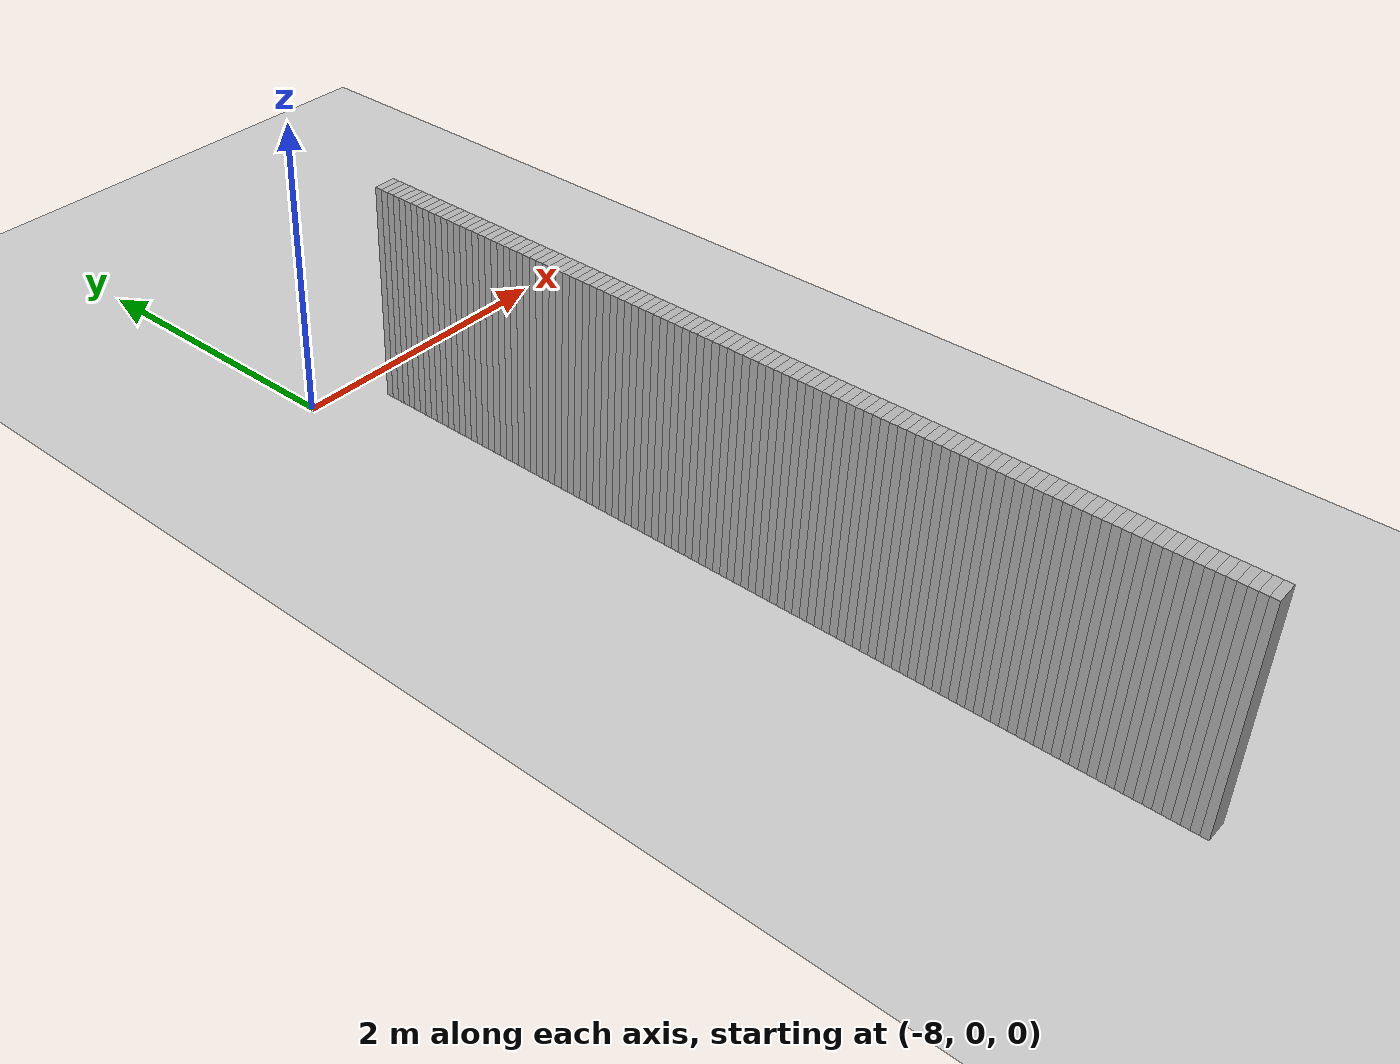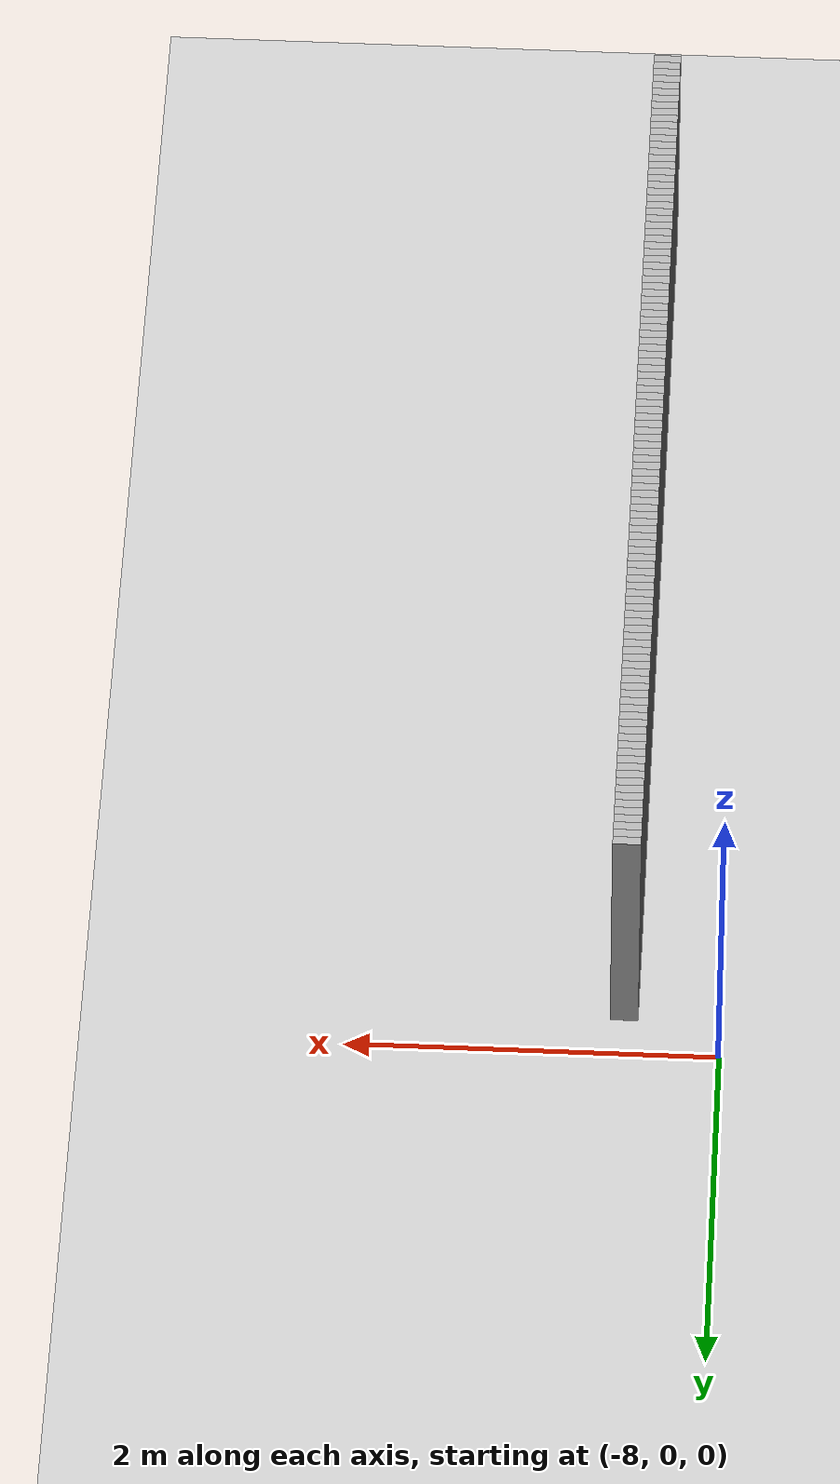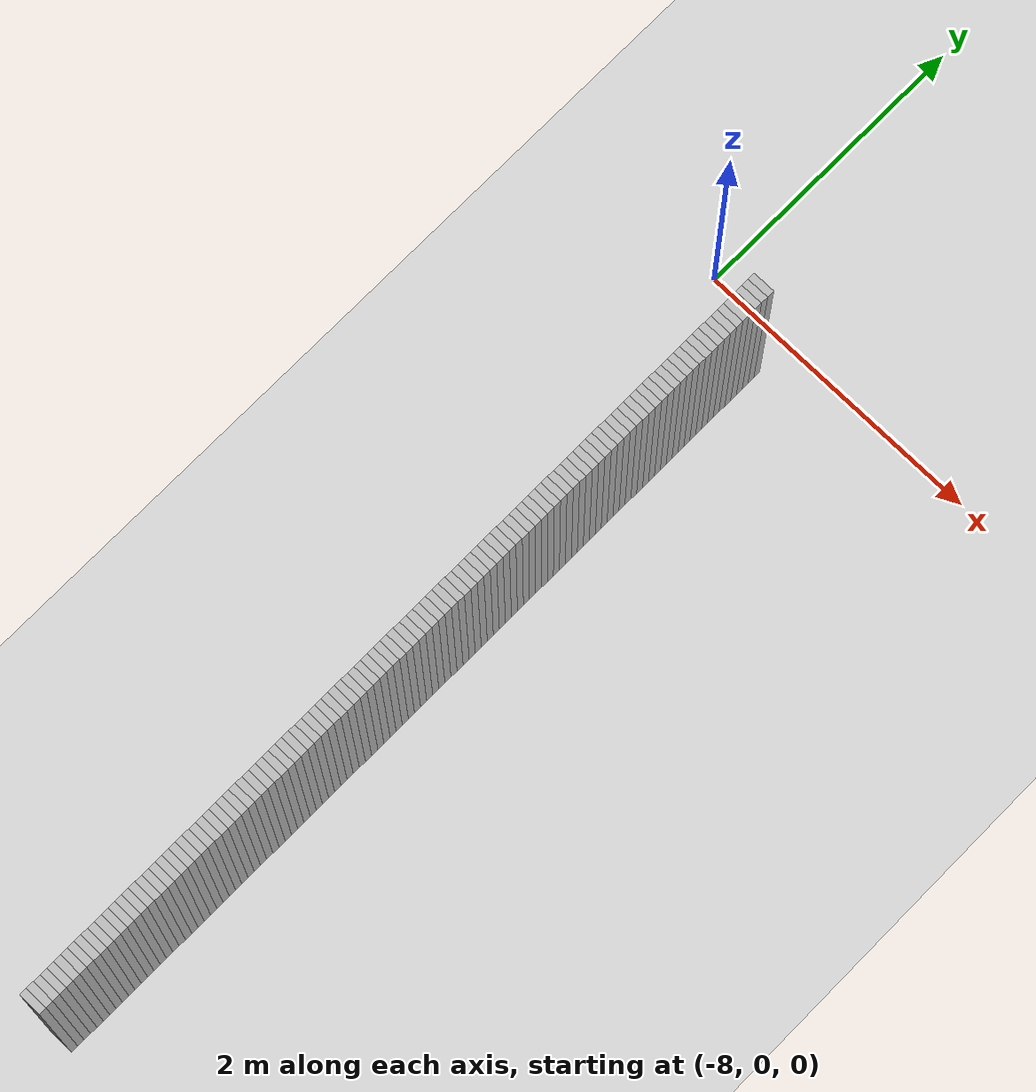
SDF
<sdf version="1.6">
 <world name="df_walled">
  <include><uri>model://sun</uri></include>
  <include><uri>model://ground_plane</uri></include>
  <model name="df_walls">
   <static>true</static>
   <link name="wall_00353">
    <pose>-7.4860 -0.2590 0.7500 0 0 0</pose>
    <collision name="col"><geometry><box><size>0.1500 0.0500 1.5000</size></box></geometry></collision>
    <visual name="vis">
     <geometry><box><size>0.1500 0.0500 1.5000</size></box></geometry>
     <material><ambient>0.5 0.5 0.5 1</ambient><diffuse>0.7 0.7 0.7 1</diffuse></material>
    </visual>
   </link>
   <link name="wall_00355">
    <pose>-7.4860 -0.3090 0.7500 0 0 0</pose>
    <collision name="col"><geometry><box><size>0.1500 0.0500 1.5000</size></box></geometry></collision>
    <visual name="vis">
     <geometry><box><size>0.1500 0.0500 1.5000</size></box></geometry>
     <material><ambient>0.5 0.5 0.5 1</ambient><diffuse>0.7 0.7 0.7 1</diffuse></material>
    </visual>
   </link>
   <link name="wall_00357">
    <pose>-7.4860 -0.3590 0.7500 0 0 0</pose>
    <collision name="col"><geometry><box><size>0.1500 0.0500 1.5000</size></box></geometry></collision>
    <visual name="vis">
     <geometry><box><size>0.1500 0.0500 1.5000</size></box></geometry>
     <material><ambient>0.5 0.5 0.5 1</ambient><diffuse>0.7 0.7 0.7 1</diffuse></material>
    </visual>
   </link>
   <link name="wall_00359">
    <pose>-7.4860 -0.4090 0.7500 0 0 0</pose>
    <collision name="col"><geometry><box><size>0.1500 0.0500 1.5000</size></box></geometry></collision>
    <visual name="vis">
     <geometry><box><size>0.1500 0.0500 1.5000</size></box></geometry>
     <material><ambient>0.5 0.5 0.5 1</ambient><diffuse>0.7 0.7 0.7 1</diffuse></material>
    </visual>
   </link>
   <link name="wall_00361">
    <pose>-7.4860 -0.4590 0.7500 0 0 0</pose>
    <collision name="col"><geometry><box><size>0.1500 0.0500 1.5000</size></box></geometry></collision>
    <visual name="vis">
     <geometry><box><size>0.1500 0.0500 1.5000</size></box></geometry>
     <material><ambient>0.5 0.5 0.5 1</ambient><diffuse>0.7 0.7 0.7 1</diffuse></material>
    </visual>
   </link>
   <link name="wall_00363">
    <pose>-7.4860 -0.5090 0.7500 0 0 0</pose>
    <collision name="col"><geometry><box><size>0.1500 0.0500 1.5000</size></box></geometry></collision>
    <visual name="vis">
     <geometry><box><size>0.1500 0.0500 1.5000</size></box></geometry>
     <material><ambient>0.5 0.5 0.5 1</ambient><diffuse>0.7 0.7 0.7 1</diffuse></material>
    </visual>
   </link>
   <link name="wall_00365">
    <pose>-7.4860 -0.5590 0.7500 0 0 0</pose>
    <collision name="col"><geometry><box><size>0.1500 0.0500 1.5000</size></box></geometry></collision>
    <visual name="vis">
     <geometry><box><size>0.1500 0.0500 1.5000</size></box></geometry>
     <material><ambient>0.5 0.5 0.5 1</ambient><diffuse>0.7 0.7 0.7 1</diffuse></material>
    </visual>
   </link>
   <link name="wall_00367">
    <pose>-7.4860 -0.6090 0.7500 0 0 0</pose>
    <collision name="col"><geometry><box><size>0.1500 0.0500 1.5000</size></box></geometry></collision>
    <visual name="vis">
     <geometry><box><size>0.1500 0.0500 1.5000</size></box></geometry>
     <material><ambient>0.5 0.5 0.5 1</ambient><diffuse>0.7 0.7 0.7 1</diffuse></material>
    </visual>
   </link>
   <link name="wall_00369">
    <pose>-7.4860 -0.6590 0.7500 0 0 0</pose>
    <collision name="col"><geometry><box><size>0.1500 0.0500 1.5000</size></box></geometry></collision>
    <visual name="vis">
     <geometry><box><size>0.1500 0.0500 1.5000</size></box></geometry>
     <material><ambient>0.5 0.5 0.5 1</ambient><diffuse>0.7 0.7 0.7 1</diffuse></material>
    </visual>
   </link>
   <link name="wall_00371">
    <pose>-7.4860 -0.7090 0.7500 0 0 0</pose>
    <collision name="col"><geometry><box><size>0.1500 0.0500 1.5000</size></box></geometry></collision>
    <visual name="vis">
     <geometry><box><size>0.1500 0.0500 1.5000</size></box></geometry>
     <material><ambient>0.5 0.5 0.5 1</ambient><diffuse>0.7 0.7 0.7 1</diffuse></material>
    </visual>
   </link>
   <link name="wall_00373">
    <pose>-7.4860 -0.7590 0.7500 0 0 0</pose>
    <collision name="col"><geometry><box><size>0.1500 0.0500 1.5000</size></box></geometry></collision>
    <visual name="vis">
     <geometry><box><size>0.1500 0.0500 1.5000</size></box></geometry>
     <material><ambient>0.5 0.5 0.5 1</ambient><diffuse>0.7 0.7 0.7 1</diffuse></material>
    </visual>
   </link>
   <link name="wall_00375">
    <pose>-7.4860 -0.8090 0.7500 0 0 0</pose>
    <collision name="col"><geometry><box><size>0.1500 0.0500 1.5000</size></box></geometry></collision>
    <visual name="vis">
     <geometry><box><size>0.1500 0.0500 1.5000</size></box></geometry>
     <material><ambient>0.5 0.5 0.5 1</ambient><diffuse>0.7 0.7 0.7 1</diffuse></material>
    </visual>
   </link>
   <link name="wall_00377">
    <pose>-7.4860 -0.8590 0.7500 0 0 0</pose>
    <collision name="col"><geometry><box><size>0.1500 0.0500 1.5000</size></box></geometry></collision>
    <visual name="vis">
     <geometry><box><size>0.1500 0.0500 1.5000</size></box></geometry>
     <material><ambient>0.5 0.5 0.5 1</ambient><diffuse>0.7 0.7 0.7 1</diffuse></material>
    </visual>
   </link>
   <link name="wall_00379">
    <pose>-7.4860 -0.9090 0.7500 0 0 0</pose>
    <collision name="col"><geometry><box><size>0.1500 0.0500 1.5000</size></box></geometry></collision>
    <visual name="vis">
     <geometry><box><size>0.1500 0.0500 1.5000</size></box></geometry>
     <material><ambient>0.5 0.5 0.5 1</ambient><diffuse>0.7 0.7 0.7 1</diffuse></material>
    </visual>
   </link>
   <link name="wall_00381">
    <pose>-7.4860 -0.9590 0.7500 0 0 0</pose>
    <collision name="col"><geometry><box><size>0.1500 0.0500 1.5000</size></box></geometry></collision>
    <visual name="vis">
     <geometry><box><size>0.1500 0.0500 1.5000</size></box></geometry>
     <material><ambient>0.5 0.5 0.5 1</ambient><diffuse>0.7 0.7 0.7 1</diffuse></material>
    </visual>
   </link>
   <link name="wall_00383">
    <pose>-7.4860 -1.0090 0.7500 0 0 0</pose>
    <collision name="col"><geometry><box><size>0.1500 0.0500 1.5000</size></box></geometry></collision>
    <visual name="vis">
     <geometry><box><size>0.1500 0.0500 1.5000</size></box></geometry>
     <material><ambient>0.5 0.5 0.5 1</ambient><diffuse>0.7 0.7 0.7 1</diffuse></material>
    </visual>
   </link>
   <link name="wall_00385">
    <pose>-7.4860 -1.0590 0.7500 0 0 0</pose>
    <collision name="col"><geometry><box><size>0.1500 0.0500 1.5000</size></box></geometry></collision>
    <visual name="vis">
     <geometry><box><size>0.1500 0.0500 1.5000</size></box></geometry>
     <material><ambient>0.5 0.5 0.5 1</ambient><diffuse>0.7 0.7 0.7 1</diffuse></material>
    </visual>
   </link>
   <link name="wall_00387">
    <pose>-7.4860 -1.1090 0.7500 0 0 0</pose>
    <collision name="col"><geometry><box><size>0.1500 0.0500 1.5000</size></box></geometry></collision>
    <visual name="vis">
     <geometry><box><size>0.1500 0.0500 1.5000</size></box></geometry>
     <material><ambient>0.5 0.5 0.5 1</ambient><diffuse>0.7 0.7 0.7 1</diffuse></material>
    </visual>
   </link>
   <link name="wall_00389">
    <pose>-7.4860 -1.1590 0.7500 0 0 0</pose>
    <collision name="col"><geometry><box><size>0.1500 0.0500 1.5000</size></box></geometry></collision>
    <visual name="vis">
     <geometry><box><size>0.1500 0.0500 1.5000</size></box></geometry>
     <material><ambient>0.5 0.5 0.5 1</ambient><diffuse>0.7 0.7 0.7 1</diffuse></material>
    </visual>
   </link>
   <link name="wall_00391">
    <pose>-7.4860 -1.2090 0.7500 0 0 0</pose>
    <collision name="col"><geometry><box><size>0.1500 0.0500 1.5000</size></box></geometry></collision>
    <visual name="vis">
     <geometry><box><size>0.1500 0.0500 1.5000</size></box></geometry>
     <material><ambient>0.5 0.5 0.5 1</ambient><diffuse>0.7 0.7 0.7 1</diffuse></material>
    </visual>
   </link>
   <link name="wall_00393">
    <pose>-7.4860 -1.2590 0.7500 0 0 0</pose>
    <collision name="col"><geometry><box><size>0.1500 0.0500 1.5000</size></box></geometry></collision>
    <visual name="vis">
     <geometry><box><size>0.1500 0.0500 1.5000</size></box></geometry>
     <material><ambient>0.5 0.5 0.5 1</ambient><diffuse>0.7 0.7 0.7 1</diffuse></material>
    </visual>
   </link>
   <link name="wall_00395">
    <pose>-7.4860 -1.3090 0.7500 0 0 0</pose>
    <collision name="col"><geometry><box><size>0.1500 0.0500 1.5000</size></box></geometry></collision>
    <visual name="vis">
     <geometry><box><size>0.1500 0.0500 1.5000</size></box></geometry>
     <material><ambient>0.5 0.5 0.5 1</ambient><diffuse>0.7 0.7 0.7 1</diffuse></material>
    </visual>
   </link>
   <link name="wall_00397">
    <pose>-7.4860 -1.3590 0.7500 0 0 0</pose>
    <collision name="col"><geometry><box><size>0.1500 0.0500 1.5000</size></box></geometry></collision>
    <visual name="vis">
     <geometry><box><size>0.1500 0.0500 1.5000</size></box></geometry>
     <material><ambient>0.5 0.5 0.5 1</ambient><diffuse>0.7 0.7 0.7 1</diffuse></material>
    </visual>
   </link>
   <link name="wall_00399">
    <pose>-7.4860 -1.4090 0.7500 0 0 0</pose>
    <collision name="col"><geometry><box><size>0.1500 0.0500 1.5000</size></box></geometry></collision>
    <visual name="vis">
     <geometry><box><size>0.1500 0.0500 1.5000</size></box></geometry>
     <material><ambient>0.5 0.5 0.5 1</ambient><diffuse>0.7 0.7 0.7 1</diffuse></material>
    </visual>
   </link>
   <link name="wall_00401">
    <pose>-7.4860 -1.4590 0.7500 0 0 0</pose>
    <collision name="col"><geometry><box><size>0.1500 0.0500 1.5000</size></box></geometry></collision>
    <visual name="vis">
     <geometry><box><size>0.1500 0.0500 1.5000</size></box></geometry>
     <material><ambient>0.5 0.5 0.5 1</ambient><diffuse>0.7 0.7 0.7 1</diffuse></material>
    </visual>
   </link>
   <link name="wall_00403">
    <pose>-7.4860 -1.5090 0.7500 0 0 0</pose>
    <collision name="col"><geometry><box><size>0.1500 0.0500 1.5000</size></box></geometry></collision>
    <visual name="vis">
     <geometry><box><size>0.1500 0.0500 1.5000</size></box></geometry>
     <material><ambient>0.5 0.5 0.5 1</ambient><diffuse>0.7 0.7 0.7 1</diffuse></material>
    </visual>
   </link>
   <link name="wall_00405">
    <pose>-7.4860 -1.5590 0.7500 0 0 0</pose>
    <collision name="col"><geometry><box><size>0.1500 0.0500 1.5000</size></box></geometry></collision>
    <visual name="vis">
     <geometry><box><size>0.1500 0.0500 1.5000</size></box></geometry>
     <material><ambient>0.5 0.5 0.5 1</ambient><diffuse>0.7 0.7 0.7 1</diffuse></material>
    </visual>
   </link>
   <link name="wall_00407">
    <pose>-7.4860 -1.6090 0.7500 0 0 0</pose>
    <collision name="col"><geometry><box><size>0.1500 0.0500 1.5000</size></box></geometry></collision>
    <visual name="vis">
     <geometry><box><size>0.1500 0.0500 1.5000</size></box></geometry>
     <material><ambient>0.5 0.5 0.5 1</ambient><diffuse>0.7 0.7 0.7 1</diffuse></material>
    </visual>
   </link>
   <link name="wall_00409">
    <pose>-7.4860 -1.6590 0.7500 0 0 0</pose>
    <collision name="col"><geometry><box><size>0.1500 0.0500 1.5000</size></box></geometry></collision>
    <visual name="vis">
     <geometry><box><size>0.1500 0.0500 1.5000</size></box></geometry>
     <material><ambient>0.5 0.5 0.5 1</ambient><diffuse>0.7 0.7 0.7 1</diffuse></material>
    </visual>
   </link>
   <link name="wall_00411">
    <pose>-7.4860 -1.7090 0.7500 0 0 0</pose>
    <collision name="col"><geometry><box><size>0.1500 0.0500 1.5000</size></box></geometry></collision>
    <visual name="vis">
     <geometry><box><size>0.1500 0.0500 1.5000</size></box></geometry>
     <material><ambient>0.5 0.5 0.5 1</ambient><diffuse>0.7 0.7 0.7 1</diffuse></material>
    </visual>
   </link>
   <link name="wall_00413">
    <pose>-7.4860 -1.7590 0.7500 0 0 0</pose>
    <collision name="col"><geometry><box><size>0.1500 0.0500 1.5000</size></box></geometry></collision>
    <visual name="vis">
     <geometry><box><size>0.1500 0.0500 1.5000</size></box></geometry>
     <material><ambient>0.5 0.5 0.5 1</ambient><diffuse>0.7 0.7 0.7 1</diffuse></material>
    </visual>
   </link>
   <link name="wall_00415">
    <pose>-7.4860 -1.8090 0.7500 0 0 0</pose>
    <collision name="col"><geometry><box><size>0.1500 0.0500 1.5000</size></box></geometry></collision>
    <visual name="vis">
     <geometry><box><size>0.1500 0.0500 1.5000</size></box></geometry>
     <material><ambient>0.5 0.5 0.5 1</ambient><diffuse>0.7 0.7 0.7 1</diffuse></material>
    </visual>
   </link>
   <link name="wall_00417">
    <pose>-7.4860 -1.8590 0.7500 0 0 0</pose>
    <collision name="col"><geometry><box><size>0.1500 0.0500 1.5000</size></box></geometry></collision>
    <visual name="vis">
     <geometry><box><size>0.1500 0.0500 1.5000</size></box></geometry>
     <material><ambient>0.5 0.5 0.5 1</ambient><diffuse>0.7 0.7 0.7 1</diffuse></material>
    </visual>
   </link>
   <link name="wall_00419">
    <pose>-7.4860 -1.9090 0.7500 0 0 0</pose>
    <collision name="col"><geometry><box><size>0.1500 0.0500 1.5000</size></box></geometry></collision>
    <visual name="vis">
     <geometry><box><size>0.1500 0.0500 1.5000</size></box></geometry>
     <material><ambient>0.5 0.5 0.5 1</ambient><diffuse>0.7 0.7 0.7 1</diffuse></material>
    </visual>
   </link>
   <link name="wall_00421">
    <pose>-7.4860 -1.9590 0.7500 0 0 0</pose>
    <collision name="col"><geometry><box><size>0.1500 0.0500 1.5000</size></box></geometry></collision>
    <visual name="vis">
     <geometry><box><size>0.1500 0.0500 1.5000</size></box></geometry>
     <material><ambient>0.5 0.5 0.5 1</ambient><diffuse>0.7 0.7 0.7 1</diffuse></material>
    </visual>
   </link>
   <link name="wall_00423">
    <pose>-7.4860 -2.0090 0.7500 0 0 0</pose>
    <collision name="col"><geometry><box><size>0.1500 0.0500 1.5000</size></box></geometry></collision>
    <visual name="vis">
     <geometry><box><size>0.1500 0.0500 1.5000</size></box></geometry>
     <material><ambient>0.5 0.5 0.5 1</ambient><diffuse>0.7 0.7 0.7 1</diffuse></material>
    </visual>
   </link>
   <link name="wall_00425">
    <pose>-7.4860 -2.0590 0.7500 0 0 0</pose>
    <collision name="col"><geometry><box><size>0.1500 0.0500 1.5000</size></box></geometry></collision>
    <visual name="vis">
     <geometry><box><size>0.1500 0.0500 1.5000</size></box></geometry>
     <material><ambient>0.5 0.5 0.5 1</ambient><diffuse>0.7 0.7 0.7 1</diffuse></material>
    </visual>
   </link>
   <link name="wall_00427">
    <pose>-7.4860 -2.1090 0.7500 0 0 0</pose>
    <collision name="col"><geometry><box><size>0.1500 0.0500 1.5000</size></box></geometry></collision>
    <visual name="vis">
     <geometry><box><size>0.1500 0.0500 1.5000</size></box></geometry>
     <material><ambient>0.5 0.5 0.5 1</ambient><diffuse>0.7 0.7 0.7 1</diffuse></material>
    </visual>
   </link>
   <link name="wall_00429">
    <pose>-7.4860 -2.1590 0.7500 0 0 0</pose>
    <collision name="col"><geometry><box><size>0.1500 0.0500 1.5000</size></box></geometry></collision>
    <visual name="vis">
     <geometry><box><size>0.1500 0.0500 1.5000</size></box></geometry>
     <material><ambient>0.5 0.5 0.5 1</ambient><diffuse>0.7 0.7 0.7 1</diffuse></material>
    </visual>
   </link>
   <link name="wall_00431">
    <pose>-7.4860 -2.2090 0.7500 0 0 0</pose>
    <collision name="col"><geometry><box><size>0.1500 0.0500 1.5000</size></box></geometry></collision>
    <visual name="vis">
     <geometry><box><size>0.1500 0.0500 1.5000</size></box></geometry>
     <material><ambient>0.5 0.5 0.5 1</ambient><diffuse>0.7 0.7 0.7 1</diffuse></material>
    </visual>
   </link>
   <link name="wall_00433">
    <pose>-7.4860 -2.2590 0.7500 0 0 0</pose>
    <collision name="col"><geometry><box><size>0.1500 0.0500 1.5000</size></box></geometry></collision>
    <visual name="vis">
     <geometry><box><size>0.1500 0.0500 1.5000</size></box></geometry>
     <material><ambient>0.5 0.5 0.5 1</ambient><diffuse>0.7 0.7 0.7 1</diffuse></material>
    </visual>
   </link>
   <link name="wall_00435">
    <pose>-7.4860 -2.3090 0.7500 0 0 0</pose>
    <collision name="col"><geometry><box><size>0.1500 0.0500 1.5000</size></box></geometry></collision>
    <visual name="vis">
     <geometry><box><size>0.1500 0.0500 1.5000</size></box></geometry>
     <material><ambient>0.5 0.5 0.5 1</ambient><diffuse>0.7 0.7 0.7 1</diffuse></material>
    </visual>
   </link>
   <link name="wall_00437">
    <pose>-7.4860 -2.3590 0.7500 0 0 0</pose>
    <collision name="col"><geometry><box><size>0.1500 0.0500 1.5000</size></box></geometry></collision>
    <visual name="vis">
     <geometry><box><size>0.1500 0.0500 1.5000</size></box></geometry>
     <material><ambient>0.5 0.5 0.5 1</ambient><diffuse>0.7 0.7 0.7 1</diffuse></material>
    </visual>
   </link>
   <link name="wall_00439">
    <pose>-7.4860 -2.4090 0.7500 0 0 0</pose>
    <collision name="col"><geometry><box><size>0.1500 0.0500 1.5000</size></box></geometry></collision>
    <visual name="vis">
     <geometry><box><size>0.1500 0.0500 1.5000</size></box></geometry>
     <material><ambient>0.5 0.5 0.5 1</ambient><diffuse>0.7 0.7 0.7 1</diffuse></material>
    </visual>
   </link>
   <link name="wall_00441">
    <pose>-7.4860 -2.4590 0.7500 0 0 0</pose>
    <collision name="col"><geometry><box><size>0.1500 0.0500 1.5000</size></box></geometry></collision>
    <visual name="vis">
     <geometry><box><size>0.1500 0.0500 1.5000</size></box></geometry>
     <material><ambient>0.5 0.5 0.5 1</ambient><diffuse>0.7 0.7 0.7 1</diffuse></material>
    </visual>
   </link>
   <link name="wall_00443">
    <pose>-7.4860 -2.5090 0.7500 0 0 0</pose>
    <collision name="col"><geometry><box><size>0.1500 0.0500 1.5000</size></box></geometry></collision>
    <visual name="vis">
     <geometry><box><size>0.1500 0.0500 1.5000</size></box></geometry>
     <material><ambient>0.5 0.5 0.5 1</ambient><diffuse>0.7 0.7 0.7 1</diffuse></material>
    </visual>
   </link>
   <link name="wall_00445">
    <pose>-7.4860 -2.5590 0.7500 0 0 0</pose>
    <collision name="col"><geometry><box><size>0.1500 0.0500 1.5000</size></box></geometry></collision>
    <visual name="vis">
     <geometry><box><size>0.1500 0.0500 1.5000</size></box></geometry>
     <material><ambient>0.5 0.5 0.5 1</ambient><diffuse>0.7 0.7 0.7 1</diffuse></material>
    </visual>
   </link>
   <link name="wall_00447">
    <pose>-7.4860 -2.6090 0.7500 0 0 0</pose>
    <collision name="col"><geometry><box><size>0.1500 0.0500 1.5000</size></box></geometry></collision>
    <visual name="vis">
     <geometry><box><size>0.1500 0.0500 1.5000</size></box></geometry>
     <material><ambient>0.5 0.5 0.5 1</ambient><diffuse>0.7 0.7 0.7 1</diffuse></material>
    </visual>
   </link>
   <link name="wall_00449">
    <pose>-7.4860 -2.6590 0.7500 0 0 0</pose>
    <collision name="col"><geometry><box><size>0.1500 0.0500 1.5000</size></box></geometry></collision>
    <visual name="vis">
     <geometry><box><size>0.1500 0.0500 1.5000</size></box></geometry>
     <material><ambient>0.5 0.5 0.5 1</ambient><diffuse>0.7 0.7 0.7 1</diffuse></material>
    </visual>
   </link>
   <link name="wall_00451">
    <pose>-7.4860 -2.7090 0.7500 0 0 0</pose>
    <collision name="col"><geometry><box><size>0.1500 0.0500 1.5000</size></box></geometry></collision>
    <visual name="vis">
     <geometry><box><size>0.1500 0.0500 1.5000</size></box></geometry>
     <material><ambient>0.5 0.5 0.5 1</ambient><diffuse>0.7 0.7 0.7 1</diffuse></material>
    </visual>
   </link>
   <link name="wall_00453">
    <pose>-7.4860 -2.7590 0.7500 0 0 0</pose>
    <collision name="col"><geometry><box><size>0.1500 0.0500 1.5000</size></box></geometry></collision>
    <visual name="vis">
     <geometry><box><size>0.1500 0.0500 1.5000</size></box></geometry>
     <material><ambient>0.5 0.5 0.5 1</ambient><diffuse>0.7 0.7 0.7 1</diffuse></material>
    </visual>
   </link>
   <link name="wall_00455">
    <pose>-7.4860 -2.8090 0.7500 0 0 0</pose>
    <collision name="col"><geometry><box><size>0.1500 0.0500 1.5000</size></box></geometry></collision>
    <visual name="vis">
     <geometry><box><size>0.1500 0.0500 1.5000</size></box></geometry>
     <material><ambient>0.5 0.5 0.5 1</ambient><diffuse>0.7 0.7 0.7 1</diffuse></material>
    </visual>
   </link>
   <link name="wall_00457">
    <pose>-7.4860 -2.8590 0.7500 0 0 0</pose>
    <collision name="col"><geometry><box><size>0.1500 0.0500 1.5000</size></box></geometry></collision>
    <visual name="vis">
     <geometry><box><size>0.1500 0.0500 1.5000</size></box></geometry>
     <material><ambient>0.5 0.5 0.5 1</ambient><diffuse>0.7 0.7 0.7 1</diffuse></material>
    </visual>
   </link>
   <link name="wall_00459">
    <pose>-7.4860 -2.9090 0.7500 0 0 0</pose>
    <collision name="col"><geometry><box><size>0.1500 0.0500 1.5000</size></box></geometry></collision>
    <visual name="vis">
     <geometry><box><size>0.1500 0.0500 1.5000</size></box></geometry>
     <material><ambient>0.5 0.5 0.5 1</ambient><diffuse>0.7 0.7 0.7 1</diffuse></material>
    </visual>
   </link>
   <link name="wall_00461">
    <pose>-7.4860 -2.9590 0.7500 0 0 0</pose>
    <collision name="col"><geometry><box><size>0.1500 0.0500 1.5000</size></box></geometry></collision>
    <visual name="vis">
     <geometry><box><size>0.1500 0.0500 1.5000</size></box></geometry>
     <material><ambient>0.5 0.5 0.5 1</ambient><diffuse>0.7 0.7 0.7 1</diffuse></material>
    </visual>
   </link>
   <link name="wall_00463">
    <pose>-7.4860 -3.0090 0.7500 0 0 0</pose>
    <collision name="col"><geometry><box><size>0.1500 0.0500 1.5000</size></box></geometry></collision>
    <visual name="vis">
     <geometry><box><size>0.1500 0.0500 1.5000</size></box></geometry>
     <material><ambient>0.5 0.5 0.5 1</ambient><diffuse>0.7 0.7 0.7 1</diffuse></material>
    </visual>
   </link>
   <link name="wall_00465">
    <pose>-7.4860 -3.0590 0.7500 0 0 0</pose>
    <collision name="col"><geometry><box><size>0.1500 0.0500 1.5000</size></box></geometry></collision>
    <visual name="vis">
     <geometry><box><size>0.1500 0.0500 1.5000</size></box></geometry>
     <material><ambient>0.5 0.5 0.5 1</ambient><diffuse>0.7 0.7 0.7 1</diffuse></material>
    </visual>
   </link>
   <link name="wall_00467">
    <pose>-7.4860 -3.1090 0.7500 0 0 0</pose>
    <collision name="col"><geometry><box><size>0.1500 0.0500 1.5000</size></box></geometry></collision>
    <visual name="vis">
     <geometry><box><size>0.1500 0.0500 1.5000</size></box></geometry>
     <material><ambient>0.5 0.5 0.5 1</ambient><diffuse>0.7 0.7 0.7 1</diffuse></material>
    </visual>
   </link>
   <link name="wall_00469">
    <pose>-7.4860 -3.1590 0.7500 0 0 0</pose>
    <collision name="col"><geometry><box><size>0.1500 0.0500 1.5000</size></box></geometry></collision>
    <visual name="vis">
     <geometry><box><size>0.1500 0.0500 1.5000</size></box></geometry>
     <material><ambient>0.5 0.5 0.5 1</ambient><diffuse>0.7 0.7 0.7 1</diffuse></material>
    </visual>
   </link>
   <link name="wall_00471">
    <pose>-7.4860 -3.2090 0.7500 0 0 0</pose>
    <collision name="col"><geometry><box><size>0.1500 0.0500 1.5000</size></box></geometry></collision>
    <visual name="vis">
     <geometry><box><size>0.1500 0.0500 1.5000</size></box></geometry>
     <material><ambient>0.5 0.5 0.5 1</ambient><diffuse>0.7 0.7 0.7 1</diffuse></material>
    </visual>
   </link>
   <link name="wall_00473">
    <pose>-7.4860 -3.2590 0.7500 0 0 0</pose>
    <collision name="col"><geometry><box><size>0.1500 0.0500 1.5000</size></box></geometry></collision>
    <visual name="vis">
     <geometry><box><size>0.1500 0.0500 1.5000</size></box></geometry>
     <material><ambient>0.5 0.5 0.5 1</ambient><diffuse>0.7 0.7 0.7 1</diffuse></material>
    </visual>
   </link>
   <link name="wall_00475">
    <pose>-7.4860 -3.3090 0.7500 0 0 0</pose>
    <collision name="col"><geometry><box><size>0.1500 0.0500 1.5000</size></box></geometry></collision>
    <visual name="vis">
     <geometry><box><size>0.1500 0.0500 1.5000</size></box></geometry>
     <material><ambient>0.5 0.5 0.5 1</ambient><diffuse>0.7 0.7 0.7 1</diffuse></material>
    </visual>
   </link>
   <link name="wall_00477">
    <pose>-7.4860 -3.3590 0.7500 0 0 0</pose>
    <collision name="col"><geometry><box><size>0.1500 0.0500 1.5000</size></box></geometry></collision>
    <visual name="vis">
     <geometry><box><size>0.1500 0.0500 1.5000</size></box></geometry>
     <material><ambient>0.5 0.5 0.5 1</ambient><diffuse>0.7 0.7 0.7 1</diffuse></material>
    </visual>
   </link>
   <link name="wall_00479">
    <pose>-7.4860 -3.4090 0.7500 0 0 0</pose>
    <collision name="col"><geometry><box><size>0.1500 0.0500 1.5000</size></box></geometry></collision>
    <visual name="vis">
     <geometry><box><size>0.1500 0.0500 1.5000</size></box></geometry>
     <material><ambient>0.5 0.5 0.5 1</ambient><diffuse>0.7 0.7 0.7 1</diffuse></material>
    </visual>
   </link>
   <link name="wall_00481">
    <pose>-7.4860 -3.4590 0.7500 0 0 0</pose>
    <collision name="col"><geometry><box><size>0.1500 0.0500 1.5000</size></box></geometry></collision>
    <visual name="vis">
     <geometry><box><size>0.1500 0.0500 1.5000</size></box></geometry>
     <material><ambient>0.5 0.5 0.5 1</ambient><diffuse>0.7 0.7 0.7 1</diffuse></material>
    </visual>
   </link>
   <link name="wall_00483">
    <pose>-7.4860 -3.5090 0.7500 0 0 0</pose>
    <collision name="col"><geometry><box><size>0.1500 0.0500 1.5000</size></box></geometry></collision>
    <visual name="vis">
     <geometry><box><size>0.1500 0.0500 1.5000</size></box></geometry>
     <material><ambient>0.5 0.5 0.5 1</ambient><diffuse>0.7 0.7 0.7 1</diffuse></material>
    </visual>
   </link>
   <link name="wall_00485">
    <pose>-7.4860 -3.5590 0.7500 0 0 0</pose>
    <collision name="col"><geometry><box><size>0.1500 0.0500 1.5000</size></box></geometry></collision>
    <visual name="vis">
     <geometry><box><size>0.1500 0.0500 1.5000</size></box></geometry>
     <material><ambient>0.5 0.5 0.5 1</ambient><diffuse>0.7 0.7 0.7 1</diffuse></material>
    </visual>
   </link>
   <link name="wall_00487">
    <pose>-7.4860 -3.6090 0.7500 0 0 0</pose>
    <collision name="col"><geometry><box><size>0.1500 0.0500 1.5000</size></box></geometry></collision>
    <visual name="vis">
     <geometry><box><size>0.1500 0.0500 1.5000</size></box></geometry>
     <material><ambient>0.5 0.5 0.5 1</ambient><diffuse>0.7 0.7 0.7 1</diffuse></material>
    </visual>
   </link>
   <link name="wall_00489">
    <pose>-7.4860 -3.6590 0.7500 0 0 0</pose>
    <collision name="col"><geometry><box><size>0.1500 0.0500 1.5000</size></box></geometry></collision>
    <visual name="vis">
     <geometry><box><size>0.1500 0.0500 1.5000</size></box></geometry>
     <material><ambient>0.5 0.5 0.5 1</ambient><diffuse>0.7 0.7 0.7 1</diffuse></material>
    </visual>
   </link>
   <link name="wall_00491">
    <pose>-7.4860 -3.7090 0.7500 0 0 0</pose>
    <collision name="col"><geometry><box><size>0.1500 0.0500 1.5000</size></box></geometry></collision>
    <visual name="vis">
     <geometry><box><size>0.1500 0.0500 1.5000</size></box></geometry>
     <material><ambient>0.5 0.5 0.5 1</ambient><diffuse>0.7 0.7 0.7 1</diffuse></material>
    </visual>
   </link>
   <link name="wall_00493">
    <pose>-7.4860 -3.7590 0.7500 0 0 0</pose>
    <collision name="col"><geometry><box><size>0.1500 0.0500 1.5000</size></box></geometry></collision>
    <visual name="vis">
     <geometry><box><size>0.1500 0.0500 1.5000</size></box></geometry>
     <material><ambient>0.5 0.5 0.5 1</ambient><diffuse>0.7 0.7 0.7 1</diffuse></material>
    </visual>
   </link>
   <link name="wall_00495">
    <pose>-7.4860 -3.8090 0.7500 0 0 0</pose>
    <collision name="col"><geometry><box><size>0.1500 0.0500 1.5000</size></box></geometry></collision>
    <visual name="vis">
     <geometry><box><size>0.1500 0.0500 1.5000</size></box></geometry>
     <material><ambient>0.5 0.5 0.5 1</ambient><diffuse>0.7 0.7 0.7 1</diffuse></material>
    </visual>
   </link>
   <link name="wall_00497">
    <pose>-7.4860 -3.8590 0.7500 0 0 0</pose>
    <collision name="col"><geometry><box><size>0.1500 0.0500 1.5000</size></box></geometry></collision>
    <visual name="vis">
     <geometry><box><size>0.1500 0.0500 1.5000</size></box></geometry>
     <material><ambient>0.5 0.5 0.5 1</ambient><diffuse>0.7 0.7 0.7 1</diffuse></material>
    </visual>
   </link>
   <link name="wall_00499">
    <pose>-7.4860 -3.9090 0.7500 0 0 0</pose>
    <collision name="col"><geometry><box><size>0.1500 0.0500 1.5000</size></box></geometry></collision>
    <visual name="vis">
     <geometry><box><size>0.1500 0.0500 1.5000</size></box></geometry>
     <material><ambient>0.5 0.5 0.5 1</ambient><diffuse>0.7 0.7 0.7 1</diffuse></material>
    </visual>
   </link>
   <link name="wall_00501">
    <pose>-7.4860 -3.9590 0.7500 0 0 0</pose>
    <collision name="col"><geometry><box><size>0.1500 0.0500 1.5000</size></box></geometry></collision>
    <visual name="vis">
     <geometry><box><size>0.1500 0.0500 1.5000</size></box></geometry>
     <material><ambient>0.5 0.5 0.5 1</ambient><diffuse>0.7 0.7 0.7 1</diffuse></material>
    </visual>
   </link>
   <link name="wall_00503">
    <pose>-7.4860 -4.0090 0.7500 0 0 0</pose>
    <collision name="col"><geometry><box><size>0.1500 0.0500 1.5000</size></box></geometry></collision>
    <visual name="vis">
     <geometry><box><size>0.1500 0.0500 1.5000</size></box></geometry>
     <material><ambient>0.5 0.5 0.5 1</ambient><diffuse>0.7 0.7 0.7 1</diffuse></material>
    </visual>
   </link>
   <link name="wall_00505">
    <pose>-7.4860 -4.0590 0.7500 0 0 0</pose>
    <collision name="col"><geometry><box><size>0.1500 0.0500 1.5000</size></box></geometry></collision>
    <visual name="vis">
     <geometry><box><size>0.1500 0.0500 1.5000</size></box></geometry>
     <material><ambient>0.5 0.5 0.5 1</ambient><diffuse>0.7 0.7 0.7 1</diffuse></material>
    </visual>
   </link>
   <link name="wall_00507">
    <pose>-7.4860 -4.1090 0.7500 0 0 0</pose>
    <collision name="col"><geometry><box><size>0.1500 0.0500 1.5000</size></box></geometry></collision>
    <visual name="vis">
     <geometry><box><size>0.1500 0.0500 1.5000</size></box></geometry>
     <material><ambient>0.5 0.5 0.5 1</ambient><diffuse>0.7 0.7 0.7 1</diffuse></material>
    </visual>
   </link>
   <link name="wall_00509">
    <pose>-7.4860 -4.1590 0.7500 0 0 0</pose>
    <collision name="col"><geometry><box><size>0.1500 0.0500 1.5000</size></box></geometry></collision>
    <visual name="vis">
     <geometry><box><size>0.1500 0.0500 1.5000</size></box></geometry>
     <material><ambient>0.5 0.5 0.5 1</ambient><diffuse>0.7 0.7 0.7 1</diffuse></material>
    </visual>
   </link>
   <link name="wall_00511">
    <pose>-7.4860 -4.2090 0.7500 0 0 0</pose>
    <collision name="col"><geometry><box><size>0.1500 0.0500 1.5000</size></box></geometry></collision>
    <visual name="vis">
     <geometry><box><size>0.1500 0.0500 1.5000</size></box></geometry>
     <material><ambient>0.5 0.5 0.5 1</ambient><diffuse>0.7 0.7 0.7 1</diffuse></material>
    </visual>
   </link>
   <link name="wall_00513">
    <pose>-7.4860 -4.2590 0.7500 0 0 0</pose>
    <collision name="col"><geometry><box><size>0.1500 0.0500 1.5000</size></box></geometry></collision>
    <visual name="vis">
     <geometry><box><size>0.1500 0.0500 1.5000</size></box></geometry>
     <material><ambient>0.5 0.5 0.5 1</ambient><diffuse>0.7 0.7 0.7 1</diffuse></material>
    </visual>
   </link>
   <link name="wall_00515">
    <pose>-7.4860 -4.3090 0.7500 0 0 0</pose>
    <collision name="col"><geometry><box><size>0.1500 0.0500 1.5000</size></box></geometry></collision>
    <visual name="vis">
     <geometry><box><size>0.1500 0.0500 1.5000</size></box></geometry>
     <material><ambient>0.5 0.5 0.5 1</ambient><diffuse>0.7 0.7 0.7 1</diffuse></material>
    </visual>
   </link>
   <link name="wall_00517">
    <pose>-7.4860 -4.3590 0.7500 0 0 0</pose>
    <collision name="col"><geometry><box><size>0.1500 0.0500 1.5000</size></box></geometry></collision>
    <visual name="vis">
     <geometry><box><size>0.1500 0.0500 1.5000</size></box></geometry>
     <material><ambient>0.5 0.5 0.5 1</ambient><diffuse>0.7 0.7 0.7 1</diffuse></material>
    </visual>
   </link>
   <link name="wall_00519">
    <pose>-7.4860 -4.4090 0.7500 0 0 0</pose>
    <collision name="col"><geometry><box><size>0.1500 0.0500 1.5000</size></box></geometry></collision>
    <visual name="vis">
     <geometry><box><size>0.1500 0.0500 1.5000</size></box></geometry>
     <material><ambient>0.5 0.5 0.5 1</ambient><diffuse>0.7 0.7 0.7 1</diffuse></material>
    </visual>
   </link>
   <link name="wall_00521">
    <pose>-7.4860 -4.4590 0.7500 0 0 0</pose>
    <collision name="col"><geometry><box><size>0.1500 0.0500 1.5000</size></box></geometry></collision>
    <visual name="vis">
     <geometry><box><size>0.1500 0.0500 1.5000</size></box></geometry>
     <material><ambient>0.5 0.5 0.5 1</ambient><diffuse>0.7 0.7 0.7 1</diffuse></material>
    </visual>
   </link>
   <link name="wall_00523">
    <pose>-7.4860 -4.5090 0.7500 0 0 0</pose>
    <collision name="col"><geometry><box><size>0.1500 0.0500 1.5000</size></box></geometry></collision>
    <visual name="vis">
     <geometry><box><size>0.1500 0.0500 1.5000</size></box></geometry>
     <material><ambient>0.5 0.5 0.5 1</ambient><diffuse>0.7 0.7 0.7 1</diffuse></material>
    </visual>
   </link>
   <link name="wall_00525">
    <pose>-7.4860 -4.5590 0.7500 0 0 0</pose>
    <collision name="col"><geometry><box><size>0.1500 0.0500 1.5000</size></box></geometry></collision>
    <visual name="vis">
     <geometry><box><size>0.1500 0.0500 1.5000</size></box></geometry>
     <material><ambient>0.5 0.5 0.5 1</ambient><diffuse>0.7 0.7 0.7 1</diffuse></material>
    </visual>
   </link>
   <link name="wall_00527">
    <pose>-7.4860 -4.6090 0.7500 0 0 0</pose>
    <collision name="col"><geometry><box><size>0.1500 0.0500 1.5000</size></box></geometry></collision>
    <visual name="vis">
     <geometry><box><size>0.1500 0.0500 1.5000</size></box></geometry>
     <material><ambient>0.5 0.5 0.5 1</ambient><diffuse>0.7 0.7 0.7 1</diffuse></material>
    </visual>
   </link>
   <link name="wall_00529">
    <pose>-7.4860 -4.6590 0.7500 0 0 0</pose>
    <collision name="col"><geometry><box><size>0.1500 0.0500 1.5000</size></box></geometry></collision>
    <visual name="vis">
     <geometry><box><size>0.1500 0.0500 1.5000</size></box></geometry>
     <material><ambient>0.5 0.5 0.5 1</ambient><diffuse>0.7 0.7 0.7 1</diffuse></material>
    </visual>
   </link>
   <link name="wall_00531">
    <pose>-7.4860 -4.7090 0.7500 0 0 0</pose>
    <collision name="col"><geometry><box><size>0.1500 0.0500 1.5000</size></box></geometry></collision>
    <visual name="vis">
     <geometry><box><size>0.1500 0.0500 1.5000</size></box></geometry>
     <material><ambient>0.5 0.5 0.5 1</ambient><diffuse>0.7 0.7 0.7 1</diffuse></material>
    </visual>
   </link>
   <link name="wall_00533">
    <pose>-7.4860 -4.7590 0.7500 0 0 0</pose>
    <collision name="col"><geometry><box><size>0.1500 0.0500 1.5000</size></box></geometry></collision>
    <visual name="vis">
     <geometry><box><size>0.1500 0.0500 1.5000</size></box></geometry>
     <material><ambient>0.5 0.5 0.5 1</ambient><diffuse>0.7 0.7 0.7 1</diffuse></material>
    </visual>
   </link>
   <link name="wall_00535">
    <pose>-7.4860 -4.8090 0.7500 0 0 0</pose>
    <collision name="col"><geometry><box><size>0.1500 0.0500 1.5000</size></box></geometry></collision>
    <visual name="vis">
     <geometry><box><size>0.1500 0.0500 1.5000</size></box></geometry>
     <material><ambient>0.5 0.5 0.5 1</ambient><diffuse>0.7 0.7 0.7 1</diffuse></material>
    </visual>
   </link>
   <link name="wall_00537">
    <pose>-7.4860 -4.8590 0.7500 0 0 0</pose>
    <collision name="col"><geometry><box><size>0.1500 0.0500 1.5000</size></box></geometry></collision>
    <visual name="vis">
     <geometry><box><size>0.1500 0.0500 1.5000</size></box></geometry>
     <material><ambient>0.5 0.5 0.5 1</ambient><diffuse>0.7 0.7 0.7 1</diffuse></material>
    </visual>
   </link>
   <link name="wall_00539">
    <pose>-7.4860 -4.9090 0.7500 0 0 0</pose>
    <collision name="col"><geometry><box><size>0.1500 0.0500 1.5000</size></box></geometry></collision>
    <visual name="vis">
     <geometry><box><size>0.1500 0.0500 1.5000</size></box></geometry>
     <material><ambient>0.5 0.5 0.5 1</ambient><diffuse>0.7 0.7 0.7 1</diffuse></material>
    </visual>
   </link>
   <link name="wall_00541">
    <pose>-7.4860 -4.9590 0.7500 0 0 0</pose>
    <collision name="col"><geometry><box><size>0.1500 0.0500 1.5000</size></box></geometry></collision>
    <visual name="vis">
     <geometry><box><size>0.1500 0.0500 1.5000</size></box></geometry>
     <material><ambient>0.5 0.5 0.5 1</ambient><diffuse>0.7 0.7 0.7 1</diffuse></material>
    </visual>
   </link>
   <link name="wall_00543">
    <pose>-7.4860 -5.0090 0.7500 0 0 0</pose>
    <collision name="col"><geometry><box><size>0.1500 0.0500 1.5000</size></box></geometry></collision>
    <visual name="vis">
     <geometry><box><size>0.1500 0.0500 1.5000</size></box></geometry>
     <material><ambient>0.5 0.5 0.5 1</ambient><diffuse>0.7 0.7 0.7 1</diffuse></material>
    </visual>
   </link>
   <link name="wall_00545">
    <pose>-7.4860 -5.0590 0.7500 0 0 0</pose>
    <collision name="col"><geometry><box><size>0.1500 0.0500 1.5000</size></box></geometry></collision>
    <visual name="vis">
     <geometry><box><size>0.1500 0.0500 1.5000</size></box></geometry>
     <material><ambient>0.5 0.5 0.5 1</ambient><diffuse>0.7 0.7 0.7 1</diffuse></material>
    </visual>
   </link>
   <link name="wall_00547">
    <pose>-7.4860 -5.1090 0.7500 0 0 0</pose>
    <collision name="col"><geometry><box><size>0.1500 0.0500 1.5000</size></box></geometry></collision>
    <visual name="vis">
     <geometry><box><size>0.1500 0.0500 1.5000</size></box></geometry>
     <material><ambient>0.5 0.5 0.5 1</ambient><diffuse>0.7 0.7 0.7 1</diffuse></material>
    </visual>
   </link>
   <link name="wall_00549">
    <pose>-7.4860 -5.1590 0.7500 0 0 0</pose>
    <collision name="col"><geometry><box><size>0.1500 0.0500 1.5000</size></box></geometry></collision>
    <visual name="vis">
     <geometry><box><size>0.1500 0.0500 1.5000</size></box></geometry>
     <material><ambient>0.5 0.5 0.5 1</ambient><diffuse>0.7 0.7 0.7 1</diffuse></material>
    </visual>
   </link>
   <link name="wall_00551">
    <pose>-7.4860 -5.2090 0.7500 0 0 0</pose>
    <collision name="col"><geometry><box><size>0.1500 0.0500 1.5000</size></box></geometry></collision>
    <visual name="vis">
     <geometry><box><size>0.1500 0.0500 1.5000</size></box></geometry>
     <material><ambient>0.5 0.5 0.5 1</ambient><diffuse>0.7 0.7 0.7 1</diffuse></material>
    </visual>
   </link>
   <link name="wall_00553">
    <pose>-7.4860 -5.2590 0.7500 0 0 0</pose>
    <collision name="col"><geometry><box><size>0.1500 0.0500 1.5000</size></box></geometry></collision>
    <visual name="vis">
     <geometry><box><size>0.1500 0.0500 1.5000</size></box></geometry>
     <material><ambient>0.5 0.5 0.5 1</ambient><diffuse>0.7 0.7 0.7 1</diffuse></material>
    </visual>
   </link>
   <link name="wall_00555">
    <pose>-7.4860 -5.3090 0.7500 0 0 0</pose>
    <collision name="col"><geometry><box><size>0.1500 0.0500 1.5000</size></box></geometry></collision>
    <visual name="vis">
     <geometry><box><size>0.1500 0.0500 1.5000</size></box></geometry>
     <material><ambient>0.5 0.5 0.5 1</ambient><diffuse>0.7 0.7 0.7 1</diffuse></material>
    </visual>
   </link>
   <link name="wall_00557">
    <pose>-7.4860 -5.3590 0.7500 0 0 0</pose>
    <collision name="col"><geometry><box><size>0.1500 0.0500 1.5000</size></box></geometry></collision>
    <visual name="vis">
     <geometry><box><size>0.1500 0.0500 1.5000</size></box></geometry>
     <material><ambient>0.5 0.5 0.5 1</ambient><diffuse>0.7 0.7 0.7 1</diffuse></material>
    </visual>
   </link>
   <link name="wall_00559">
    <pose>-7.4860 -5.4090 0.7500 0 0 0</pose>
    <collision name="col"><geometry><box><size>0.1500 0.0500 1.5000</size></box></geometry></collision>
    <visual name="vis">
     <geometry><box><size>0.1500 0.0500 1.5000</size></box></geometry>
     <material><ambient>0.5 0.5 0.5 1</ambient><diffuse>0.7 0.7 0.7 1</diffuse></material>
    </visual>
   </link>
   <link name="wall_00561">
    <pose>-7.4860 -5.4590 0.7500 0 0 0</pose>
    <collision name="col"><geometry><box><size>0.1500 0.0500 1.5000</size></box></geometry></collision>
    <visual name="vis">
     <geometry><box><size>0.1500 0.0500 1.5000</size></box></geometry>
     <material><ambient>0.5 0.5 0.5 1</ambient><diffuse>0.7 0.7 0.7 1</diffuse></material>
    </visual>
   </link>
   <link name="wall_00563">
    <pose>-7.4860 -5.5090 0.7500 0 0 0</pose>
    <collision name="col"><geometry><box><size>0.1500 0.0500 1.5000</size></box></geometry></collision>
    <visual name="vis">
     <geometry><box><size>0.1500 0.0500 1.5000</size></box></geometry>
     <material><ambient>0.5 0.5 0.5 1</ambient><diffuse>0.7 0.7 0.7 1</diffuse></material>
    </visual>
   </link>
   <link name="wall_00565">
    <pose>-7.4860 -5.5590 0.7500 0 0 0</pose>
    <collision name="col"><geometry><box><size>0.1500 0.0500 1.5000</size></box></geometry></collision>
    <visual name="vis">
     <geometry><box><size>0.1500 0.0500 1.5000</size></box></geometry>
     <material><ambient>0.5 0.5 0.5 1</ambient><diffuse>0.7 0.7 0.7 1</diffuse></material>
    </visual>
   </link>
   <link name="wall_00567">
    <pose>-7.4860 -5.6090 0.7500 0 0 0</pose>
    <collision name="col"><geometry><box><size>0.1500 0.0500 1.5000</size></box></geometry></collision>
    <visual name="vis">
     <geometry><box><size>0.1500 0.0500 1.5000</size></box></geometry>
     <material><ambient>0.5 0.5 0.5 1</ambient><diffuse>0.7 0.7 0.7 1</diffuse></material>
    </visual>
   </link>
   <link name="wall_00569">
    <pose>-7.4860 -5.6590 0.7500 0 0 0</pose>
    <collision name="col"><geometry><box><size>0.1500 0.0500 1.5000</size></box></geometry></collision>
    <visual name="vis">
     <geometry><box><size>0.1500 0.0500 1.5000</size></box></geometry>
     <material><ambient>0.5 0.5 0.5 1</ambient><diffuse>0.7 0.7 0.7 1</diffuse></material>
    </visual>
   </link>
   <link name="wall_00571">
    <pose>-7.4860 -5.7090 0.7500 0 0 0</pose>
    <collision name="col"><geometry><box><size>0.1500 0.0500 1.5000</size></box></geometry></collision>
    <visual name="vis">
     <geometry><box><size>0.1500 0.0500 1.5000</size></box></geometry>
     <material><ambient>0.5 0.5 0.5 1</ambient><diffuse>0.7 0.7 0.7 1</diffuse></material>
    </visual>
   </link>
   <link name="wall_00573">
    <pose>-7.4860 -5.7590 0.7500 0 0 0</pose>
    <collision name="col"><geometry><box><size>0.1500 0.0500 1.5000</size></box></geometry></collision>
    <visual name="vis">
     <geometry><box><size>0.1500 0.0500 1.5000</size></box></geometry>
     <material><ambient>0.5 0.5 0.5 1</ambient><diffuse>0.7 0.7 0.7 1</diffuse></material>
    </visual>
   </link>
   <link name="wall_00575">
    <pose>-7.4860 -5.8090 0.7500 0 0 0</pose>
    <collision name="col"><geometry><box><size>0.1500 0.0500 1.5000</size></box></geometry></collision>
    <visual name="vis">
     <geometry><box><size>0.1500 0.0500 1.5000</size></box></geometry>
     <material><ambient>0.5 0.5 0.5 1</ambient><diffuse>0.7 0.7 0.7 1</diffuse></material>
    </visual>
   </link>
   <link name="wall_00577">
    <pose>-7.4860 -5.8590 0.7500 0 0 0</pose>
    <collision name="col"><geometry><box><size>0.1500 0.0500 1.5000</size></box></geometry></collision>
    <visual name="vis">
     <geometry><box><size>0.1500 0.0500 1.5000</size></box></geometry>
     <material><ambient>0.5 0.5 0.5 1</ambient><diffuse>0.7 0.7 0.7 1</diffuse></material>
    </visual>
   </link>
  </model>
 </world>
</sdf>
